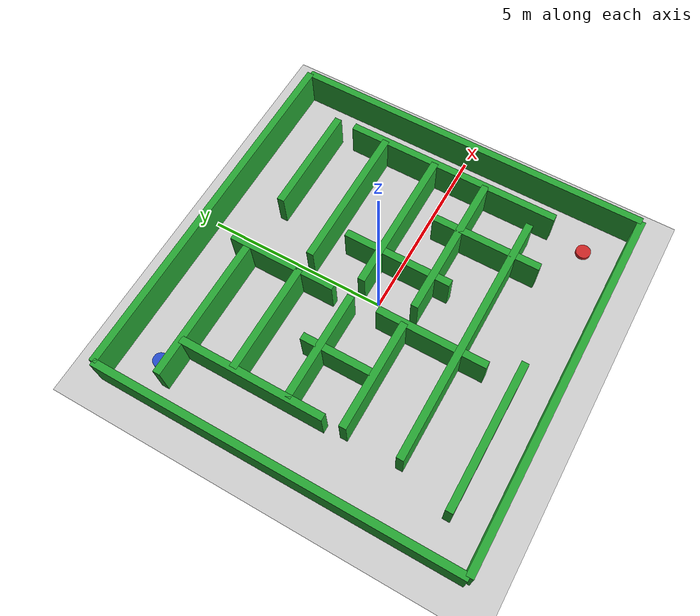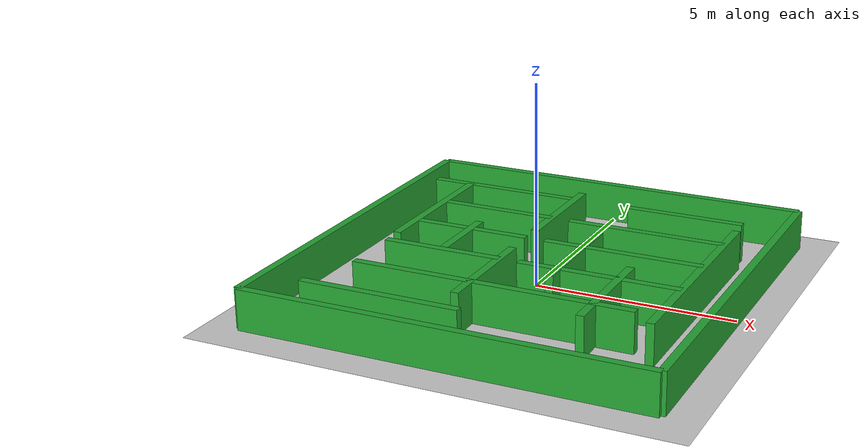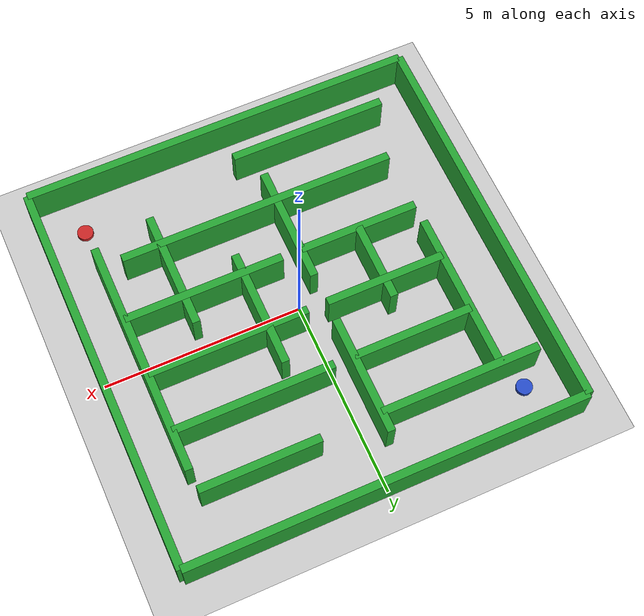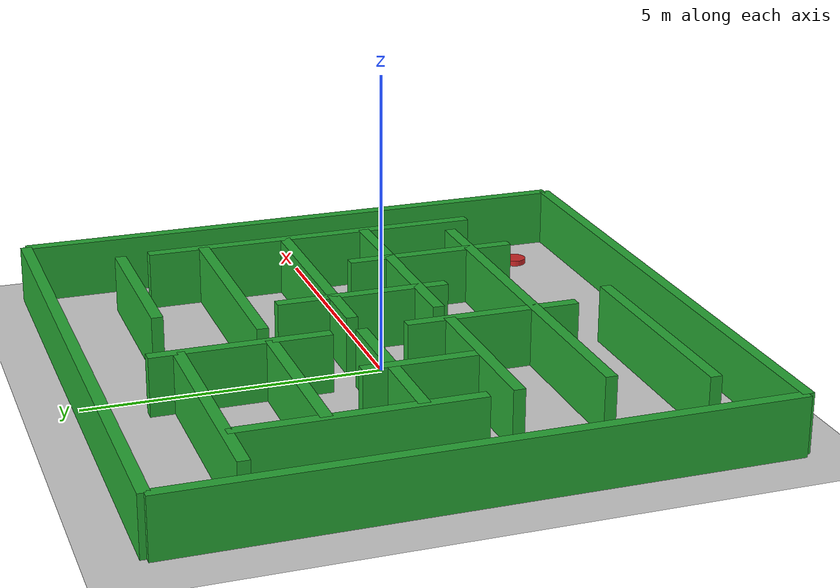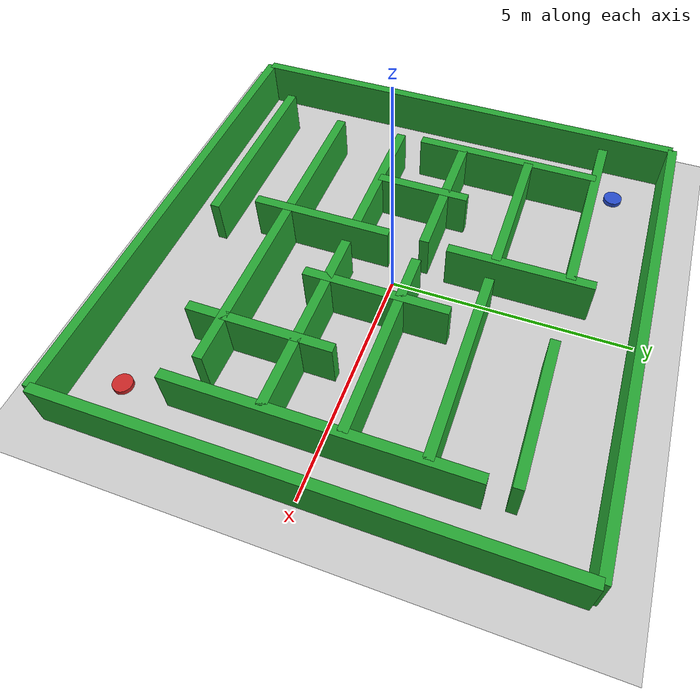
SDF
<?xml version="1.0" ?>
<sdf version="1.6">
  <world name="maze_world">
    <include>
      <uri>model://ground_plane</uri>
    </include>

    <include>
      <uri>model://sun</uri>
    </include>

    <!-- Maze walls -->
    <!-- Outer walls -->
    <!-- North wall -->
    <model name="north_wall">
      <static>true</static>
      <pose>0 5.0 0.5 0 0 0</pose>
      <link name="link">
        <collision name="collision">
          <geometry>
            <box>
              <size>10.0 0.2 1.0</size>
            </box>
          </geometry>
        </collision>
        <visual name="visual">
          <geometry>
            <box>
              <size>10.0 0.2 1.0</size>
            </box>
          </geometry>
          <material>
            <script>
              <uri>file://media/materials/scripts/gazebo.material</uri>
              <name>Gazebo/Green</name>
            </script>
          </material>
        </visual>
      </link>
    </model>

    <!-- South wall -->
    <model name="south_wall">
      <static>true</static>
      <pose>0 -5.0 0.5 0 0 0</pose>
      <link name="link">
        <collision name="collision">
          <geometry>
            <box>
              <size>10.0 0.2 1.0</size>
            </box>
          </geometry>
        </collision>
        <visual name="visual">
          <geometry>
            <box>
              <size>10.0 0.2 1.0</size>
            </box>
          </geometry>
          <material>
            <script>
              <uri>file://media/materials/scripts/gazebo.material</uri>
              <name>Gazebo/Green</name>
            </script>
          </material>
        </visual>
      </link>
    </model>

    <!-- East wall -->
    <model name="east_wall">
      <static>true</static>
      <pose>5.0 0 0.5 0 0 0</pose>
      <link name="link">
        <collision name="collision">
          <geometry>
            <box>
              <size>0.2 10.0 1.0</size>
            </box>
          </geometry>
        </collision>
        <visual name="visual">
          <geometry>
            <box>
              <size>0.2 10.0 1.0</size>
            </box>
          </geometry>
          <material>
            <script>
              <uri>file://media/materials/scripts/gazebo.material</uri>
              <name>Gazebo/Green</name>
            </script>
          </material>
        </visual>
      </link>
    </model>

    <!-- West wall -->
    <model name="west_wall">
      <static>true</static>
      <pose>-5.0 0 0.5 0 0 0</pose>
      <link name="link">
        <collision name="collision">
          <geometry>
            <box>
              <size>0.2 10.0 1.0</size>
            </box>
          </geometry>
        </collision>
        <visual name="visual">
          <geometry>
            <box>
              <size>0.2 10.0 1.0</size>
            </box>
          </geometry>
          <material>
            <script>
              <uri>file://media/materials/scripts/gazebo.material</uri>
              <name>Gazebo/Green</name>
            </script>
          </material>
        </visual>
      </link>
    </model>

    <!-- Inner walls - These represent the maze structure from the provided image -->
    <!-- Horizontal walls -->
    <model name="h_wall_1">
      <static>true</static>
      <pose>-2.5 3.5 0.5 0 0 0</pose>
      <link name="link">
        <collision name="collision">
          <geometry>
            <box>
              <size>4.0 0.2 1.0</size>
            </box>
          </geometry>
        </collision>
        <visual name="visual">
          <geometry>
            <box>
              <size>4.0 0.2 1.0</size>
            </box>
          </geometry>
          <material>
            <script>
              <uri>file://media/materials/scripts/gazebo.material</uri>
              <name>Gazebo/Green</name>
            </script>
          </material>
        </visual>
      </link>
    </model>

    <model name="h_wall_2">
      <static>true</static>
      <pose>2.5 3.5 0.5 0 0 0</pose>
      <link name="link">
        <collision name="collision">
          <geometry>
            <box>
              <size>3.0 0.2 1.0</size>
            </box>
          </geometry>
        </collision>
        <visual name="visual">
          <geometry>
            <box>
              <size>3.0 0.2 1.0</size>
            </box>
          </geometry>
          <material>
            <script>
              <uri>file://media/materials/scripts/gazebo.material</uri>
              <name>Gazebo/Green</name>
            </script>
          </material>
        </visual>
      </link>
    </model>

    <model name="h_wall_3">
      <static>true</static>
      <pose>-2.0 2.0 0.5 0 0 0</pose>
      <link name="link">
        <collision name="collision">
          <geometry>
            <box>
              <size>3.0 0.2 1.0</size>
            </box>
          </geometry>
        </collision>
        <visual name="visual">
          <geometry>
            <box>
              <size>3.0 0.2 1.0</size>
            </box>
          </geometry>
          <material>
            <script>
              <uri>file://media/materials/scripts/gazebo.material</uri>
              <name>Gazebo/Green</name>
            </script>
          </material>
        </visual>
      </link>
    </model>

    <!-- Additional horizontal walls based on maze image -->
    <model name="h_wall_4">
      <static>true</static>
      <pose>2.0 2.0 0.5 0 0 0</pose>
      <link name="link">
        <collision name="collision">
          <geometry>
            <box>
              <size>4.0 0.2 1.0</size>
            </box>
          </geometry>
        </collision>
        <visual name="visual">
          <geometry>
            <box>
              <size>4.0 0.2 1.0</size>
            </box>
          </geometry>
          <material>
            <script>
              <uri>file://media/materials/scripts/gazebo.material</uri>
              <name>Gazebo/Green</name>
            </script>
          </material>
        </visual>
      </link>
    </model>

    <model name="h_wall_5">
      <static>true</static>
      <pose>-2.0 0.5 0.5 0 0 0</pose>
      <link name="link">
        <collision name="collision">
          <geometry>
            <box>
              <size>3.0 0.2 1.0</size>
            </box>
          </geometry>
        </collision>
        <visual name="visual">
          <geometry>
            <box>
              <size>3.0 0.2 1.0</size>
            </box>
          </geometry>
          <material>
            <script>
              <uri>file://media/materials/scripts/gazebo.material</uri>
              <name>Gazebo/Green</name>
            </script>
          </material>
        </visual>
      </link>
    </model>

    <model name="h_wall_6">
      <static>true</static>
      <pose>2.0 0.5 0.5 0 0 0</pose>
      <link name="link">
        <collision name="collision">
          <geometry>
            <box>
              <size>4.0 0.2 1.0</size>
            </box>
          </geometry>
        </collision>
        <visual name="visual">
          <geometry>
            <box>
              <size>4.0 0.2 1.0</size>
            </box>
          </geometry>
          <material>
            <script>
              <uri>file://media/materials/scripts/gazebo.material</uri>
              <name>Gazebo/Green</name>
            </script>
          </material>
        </visual>
      </link>
    </model>

    <model name="h_wall_7">
      <static>true</static>
      <pose>-2.0 -1.0 0.5 0 0 0</pose>
      <link name="link">
        <collision name="collision">
          <geometry>
            <box>
              <size>3.0 0.2 1.0</size>
            </box>
          </geometry>
        </collision>
        <visual name="visual">
          <geometry>
            <box>
              <size>3.0 0.2 1.0</size>
            </box>
          </geometry>
          <material>
            <script>
              <uri>file://media/materials/scripts/gazebo.material</uri>
              <name>Gazebo/Green</name>
            </script>
          </material>
        </visual>
      </link>
    </model>

    <model name="h_wall_8">
      <static>true</static>
      <pose>2.0 -1.0 0.5 0 0 0</pose>
      <link name="link">
        <collision name="collision">
          <geometry>
            <box>
              <size>4.0 0.2 1.0</size>
            </box>
          </geometry>
        </collision>
        <visual name="visual">
          <geometry>
            <box>
              <size>4.0 0.2 1.0</size>
            </box>
          </geometry>
          <material>
            <script>
              <uri>file://media/materials/scripts/gazebo.material</uri>
              <name>Gazebo/Green</name>
            </script>
          </material>
        </visual>
      </link>
    </model>

    <model name="h_wall_9">
      <static>true</static>
      <pose>0.0 -2.5 0.5 0 0 0</pose>
      <link name="link">
        <collision name="collision">
          <geometry>
            <box>
              <size>7.0 0.2 1.0</size>
            </box>
          </geometry>
        </collision>
        <visual name="visual">
          <geometry>
            <box>
              <size>7.0 0.2 1.0</size>
            </box>
          </geometry>
          <material>
            <script>
              <uri>file://media/materials/scripts/gazebo.material</uri>
              <name>Gazebo/Green</name>
            </script>
          </material>
        </visual>
      </link>
    </model>

    <model name="h_wall_10">
      <static>true</static>
      <pose>-2.0 -4.0 0.5 0 0 0</pose>
      <link name="link">
        <collision name="collision">
          <geometry>
            <box>
              <size>4.0 0.2 1.0</size>
            </box>
          </geometry>
        </collision>
        <visual name="visual">
          <geometry>
            <box>
              <size>4.0 0.2 1.0</size>
            </box>
          </geometry>
          <material>
            <script>
              <uri>file://media/materials/scripts/gazebo.material</uri>
              <name>Gazebo/Green</name>
            </script>
          </material>
        </visual>
      </link>
    </model>

    <!-- Vertical walls -->
    <model name="v_wall_1">
      <static>true</static>
      <pose>-3.5 1.5 0.5 0 0 0</pose>
      <link name="link">
        <collision name="collision">
          <geometry>
            <box>
              <size>0.2 4.0 1.0</size>
            </box>
          </geometry>
        </collision>
        <visual name="visual">
          <geometry>
            <box>
              <size>0.2 4.0 1.0</size>
            </box>
          </geometry>
          <material>
            <script>
              <uri>file://media/materials/scripts/gazebo.material</uri>
              <name>Gazebo/Green</name>
            </script>
          </material>
        </visual>
      </link>
    </model>

    <model name="v_wall_2">
      <static>true</static>
      <pose>-2.0 0.0 0.5 0 0 0</pose>
      <link name="link">
        <collision name="collision">
          <geometry>
            <box>
              <size>0.2 2.0 1.0</size>
            </box>
          </geometry>
        </collision>
        <visual name="visual">
          <geometry>
            <box>
              <size>0.2 2.0 1.0</size>
            </box>
          </geometry>
          <material>
            <script>
              <uri>file://media/materials/scripts/gazebo.material</uri>
              <name>Gazebo/Green</name>
            </script>
          </material>
        </visual>
      </link>
    </model>

    <model name="v_wall_3">
      <static>true</static>
      <pose>-0.5 2.5 0.5 0 0 0</pose>
      <link name="link">
        <collision name="collision">
          <geometry>
            <box>
              <size>0.2 3.0 1.0</size>
            </box>
          </geometry>
        </collision>
        <visual name="visual">
          <geometry>
            <box>
              <size>0.2 3.0 1.0</size>
            </box>
          </geometry>
          <material>
            <script>
              <uri>file://media/materials/scripts/gazebo.material</uri>
              <name>Gazebo/Green</name>
            </script>
          </material>
        </visual>
      </link>
    </model>

    <!-- Additional vertical walls based on maze image -->
    <model name="v_wall_4">
      <static>true</static>
      <pose>-0.5 -1.75 0.5 0 0 0</pose>
      <link name="link">
        <collision name="collision">
          <geometry>
            <box>
              <size>0.2 3.0 1.0</size>
            </box>
          </geometry>
        </collision>
        <visual name="visual">
          <geometry>
            <box>
              <size>0.2 3.0 1.0</size>
            </box>
          </geometry>
          <material>
            <script>
              <uri>file://media/materials/scripts/gazebo.material</uri>
              <name>Gazebo/Green</name>
            </script>
          </material>
        </visual>
      </link>
    </model>

    <model name="v_wall_5">
      <static>true</static>
      <pose>1.0 0.0 0.5 0 0 0</pose>
      <link name="link">
        <collision name="collision">
          <geometry>
            <box>
              <size>0.2 3.0 1.0</size>
            </box>
          </geometry>
        </collision>
        <visual name="visual">
          <geometry>
            <box>
              <size>0.2 3.0 1.0</size>
            </box>
          </geometry>
          <material>
            <script>
              <uri>file://media/materials/scripts/gazebo.material</uri>
              <name>Gazebo/Green</name>
            </script>
          </material>
        </visual>
      </link>
    </model>

    <model name="v_wall_6">
      <static>true</static>
      <pose>2.5 -1.75 0.5 0 0 0</pose>
      <link name="link">
        <collision name="collision">
          <geometry>
            <box>
              <size>0.2 3.0 1.0</size>
            </box>
          </geometry>
        </collision>
        <visual name="visual">
          <geometry>
            <box>
              <size>0.2 3.0 1.0</size>
            </box>
          </geometry>
          <material>
            <script>
              <uri>file://media/materials/scripts/gazebo.material</uri>
              <name>Gazebo/Green</name>
            </script>
          </material>
        </visual>
      </link>
    </model>

    <model name="v_wall_7">
      <static>true</static>
      <pose>4.0 0.0 0.5 0 0 0</pose>
      <link name="link">
        <collision name="collision">
          <geometry>
            <box>
              <size>0.2 6.0 1.0</size>
            </box>
          </geometry>
        </collision>
        <visual name="visual">
          <geometry>
            <box>
              <size>0.2 6.0 1.0</size>
            </box>
          </geometry>
          <material>
            <script>
              <uri>file://media/materials/scripts/gazebo.material</uri>
              <name>Gazebo/Green</name>
            </script>
          </material>
        </visual>
      </link>
    </model>

    <!-- Target Point B marker -->
    <model name="target_marker">
      <static>true</static>
      <pose>4.0 -4.0 0.05 0 0 0</pose>
      <link name="link">
        <collision name="collision">
          <geometry>
            <cylinder>
              <radius>0.2</radius>
              <length>0.1</length>
            </cylinder>
          </geometry>
        </collision>
        <visual name="visual">
          <geometry>
            <cylinder>
              <radius>0.2</radius>
              <length>0.1</length>
            </cylinder>
          </geometry>
          <material>
            <script>
              <uri>file://media/materials/scripts/gazebo.material</uri>
              <name>Gazebo/Red</name>
            </script>
          </material>
        </visual>
      </link>
    </model>

    <!-- Starting Point A marker -->
    <model name="start_marker">
      <static>true</static>
      <pose>-4.0 4.0 0.05 0 0 0</pose>
      <link name="link">
        <collision name="collision">
          <geometry>
            <cylinder>
              <radius>0.2</radius>
              <length>0.1</length>
            </cylinder>
          </geometry>
        </collision>
        <visual name="visual">
          <geometry>
            <cylinder>
              <radius>0.2</radius>
              <length>0.1</length>
            </cylinder>
          </geometry>
          <material>
            <script>
              <uri>file://media/materials/scripts/gazebo.material</uri>
              <name>Gazebo/Blue</name>
            </script>
          </material>
        </visual>
      </link>
    </model>

    <!-- Physics properties -->
    <physics type="ode">
      <real_time_update_rate>1000.0</real_time_update_rate>
      <max_step_size>0.001</max_step_size>
      <real_time_factor>1</real_time_factor>
      <ode>
        <solver>
          <type>quick</type>
          <iters>150</iters>
          <precon_iters>0</precon_iters>
          <sor>1.400000</sor>
          <use_dynamic_moi_rescaling>1</use_dynamic_moi_rescaling>
        </solver>
        <constraints>
          <cfm>0.00001</cfm>
          <erp>0.2</erp>
          <contact_max_correcting_vel>2000.000000</contact_max_correcting_vel>
          <contact_surface_layer>0.01000</contact_surface_layer>
        </constraints>
      </ode>
    </physics>
  </world>
</sdf>
